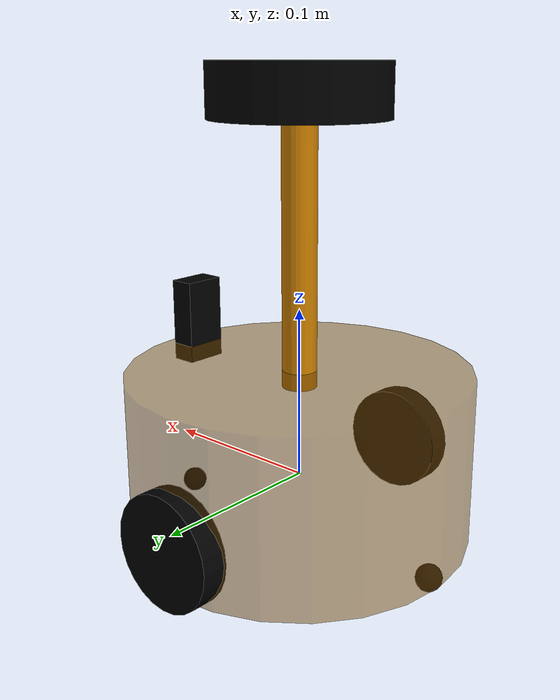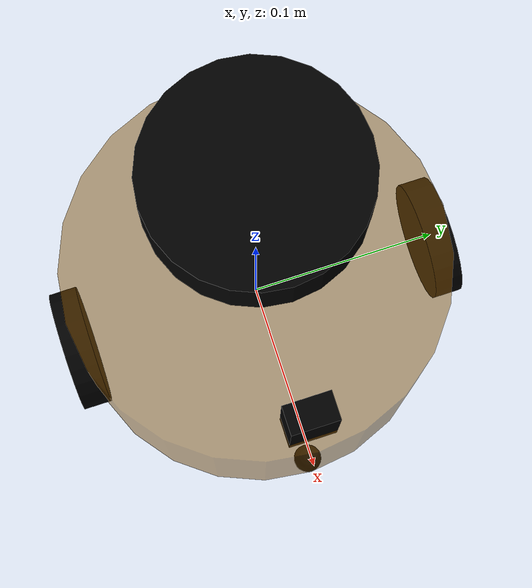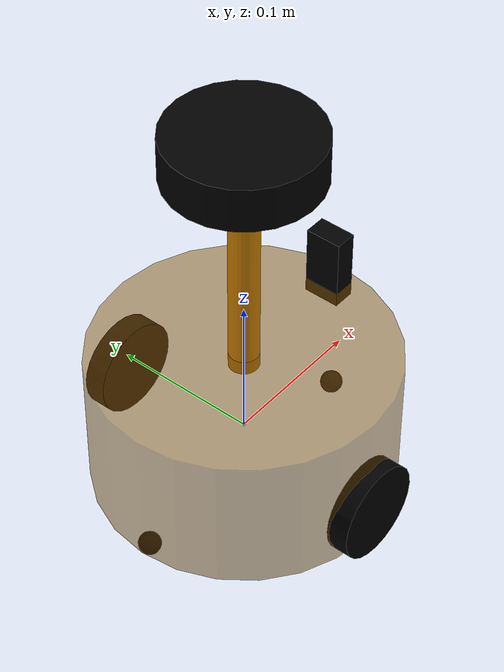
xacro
<robot name="mycar" xmlns:xacro="http://www.ros.org/wiki/xacro">

    <!-- 载入文件 -->
    <xacro:include filename="car_h.urdf.xacro" />
    <xacro:include filename="demo1_car_base.urdf.xacro" />
    <xacro:include filename="demo2_car_camera.urdf.xacro" />
    <xacro:include filename="demo3_car_ladar.urdf.xacro" />
    <xacro:include filename="gazebo/move.xacro" />

</robot>

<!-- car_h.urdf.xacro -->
<robot name="mycar" xmlns:xacro="http://wiki.ros.org/xacro">
    <!-- Macro for inertia matrix -->
    <xacro:macro name="sphere_inertial_matrix" params="m r">
        <inertial>
            <mass value="${m}" />
            <inertia ixx="${2*m*r*r/5}" ixy="0" ixz="0"
                iyy="${2*m*r*r/5}" iyz="0"
                izz="${2*m*r*r/5}" />
        </inertial>
    </xacro:macro>

    <xacro:macro name="cylinder_inertial_matrix" params="m r h">
        <inertial>
            <mass value="${m}" />
            <inertia ixx="${m*(3*r*r+h*h)/12}" ixy = "0" ixz = "0"
                iyy="${m*(3*r*r+h*h)/12}" iyz = "0"
                izz="${m*r*r/2}" />
        </inertial>
    </xacro:macro>

    <xacro:macro name="Box_inertial_matrix" params="m l w h">
       <inertial>
               <mass value="${m}" />
               <inertia ixx="${m*(h*h + l*l)/12}" ixy = "0" ixz = "0"
                   iyy="${m*(w*w + l*l)/12}" iyz= "0"
                   izz="${m*(w*w + h*h)/12}" />
       </inertial>
   </xacro:macro>
</robot>

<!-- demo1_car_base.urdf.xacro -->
<robot name="mycar" xmlns:xacro="http://www.ros.org/wiki/xacro">

    <!-- 定义常数 pi -->
    <xacro:property name="PI" value="3.1415927" />

    <!-- footprint -->
    <xacro:property name="footprint_radius" value="0.001" />
    <link name="base_footprint">
        <visual>
            <geometry>
                <sphere radius="${footprint_radius}" />
            </geometry>
            <origin xyz="0 0 0" rpy="0 0 0" />
            <material name="footprint_color">
                <color rgba="0 1 0 1" />
            </material>
        </visual>
    </link>

    <!-- 底盘为圆柱状，半径 10cm，高 8cm -->
    <xacro:property name="base_radius" value="0.1" />
    <xacro:property name="base_length" value="0.08" />
    <xacro:property name="base_mass" value="1" />

    <link name="base_link">
        <visual>
            <geometry>
                <cylinder radius="${base_radius}" length="${base_radius}" />
            </geometry>

            <material name="yellow">
                <color rgba="0.5 0.3 0.0 0.5" />
            </material>
        </visual>

        <!-- 若要在 gazebo 中显示机器人模型，则需要设置碰撞参数和惯性矩阵
            碰撞参数：对于规则物体，碰撞参数即为 visual 中的 geometry
            惯性矩阵：需要计算得出，可调用封装好的 xacro 宏-->

         <collision>
            <geometry>
                <cylinder radius="${base_radius}" length="${base_radius}" />
            </geometry>
        </collision>

        <xacro:cylinder_inertial_matrix m="${base_mass}" r="${base_radius}" h="${base_length}" />
    </link>

    <!-- 设置在 gazebo 中显示的颜色（之前在 rviz 中设置的颜色无法在 gazebo 中显示，故需另外设置） -->
    <gazebo reference="base_link">
        <material>Gazebo/Yellow</material>
    </gazebo>

    <!-- 关联 footprint 和 base_link -->
    <!-- 底盘离地间距为 1.5cm -->
    <xacro:property name="lidi" value="0.015" />
    <joint name="base2foot" type="fixed">
        <parent link="base_footprint" />
        <child link="base_link" />
        <origin xyz="0 0 ${lidi}" rpy="0 0 0" />
    </joint>

    <!-- 左右驱动轮 -->
    <!-- 两个驱动轮半径为 3.25cm,轮胎宽度1.5cm -->
    <xacro:property name="go_wheel_radius" value="0.0325" />
    <xacro:property name="go_wheel_length" value="0.015" />
    <xacro:property name="go_wheel_joint_z" value="${-1*(base_length / 2 + lidi - go_wheel_radius)}" />
    <xacro:property name="go_wheel_mass" value="0.1" />

    <xacro:macro name="go_wheel_func" params="go_wheel_name flag">
    <!-- wheel_name 为轮子名字，输入 left 或 right -->
    <!-- flag 为标志，左轮为1，右轮为-1 -->
        <link name="${go_wheel_name}_wheel">
            <visual>
                <geometry>
                    <cylinder radius="${go_wheel_radius}" length="${go_wheel_length}" />
                </geometry>
                <origin xyz="0 0 0" rpy="${PI / 2} 0 0" />
                <material name="black">
                    <color rgba="0 0 0 1" />
                </material>
            </visual>

            <collision>
                <geometry>
                    <cylinder radius="${go_wheel_radius}" length="${go_wheel_length}" />
                </geometry>
            </collision>

            <xacro:cylinder_inertial_matrix m="${go_wheel_mass}" r="${go_wheel_radius}" h="${go_wheel_length}" />

        </link>

         <gazebo reference="${go_wheel_name}_wheel">
            <material>Gazebo/Black</material>
        </gazebo>

        <!-- 关节偏移：
                x 无偏移
                y 车体半径(左轮在正半轴，右轮在负半轴)
                z z = -(车体高度 / 2 + 离地间距 - 车轮半径) -->
        <joint name="${go_wheel_name}2base" type="continuous">
            <parent link="base_link" />
            <child link="${go_wheel_name}_wheel" />
            <origin xyz="0 ${flag * base_radius} ${go_wheel_joint_z}" />
            <axis xyz="0 1 0" />
        </joint>
    </xacro:macro>

    <xacro:go_wheel_func go_wheel_name="left" flag="1" />
    <xacro:go_wheel_func go_wheel_name="right" flag="-1" />

    <!-- 前后万向轮 -->
    <!-- 两个万向轮为球状，半径 0.75cm -->
    <xacro:property name="round_wheel_radius" value="0.0075" />
    <xacro:property name="round_wheel_mass" value="0.01" />

    <xacro:macro name="round_wheel_func" params="round_wheel_name flag">
        <link name="${round_wheel_name}_wheel">
            <visual>
                <geometry>
                    <sphere radius="${round_wheel_radius}" />
                </geometry>

                <material name="black">
                    <color rgba="0 0 0 1" />
                </material>
            </visual>

            <collision>
                <geometry>
                    <sphere radius="${round_wheel_radius}" />
                </geometry>
            </collision>

            <xacro:sphere_inertial_matrix m="${round_wheel_mass}" r="${round_wheel_radius}" />

        </link>

         <gazebo reference="${round_wheel_name}_wheel">
            <material>Gazebo/Black</material>
        </gazebo>

        <!-- 关节偏移：
                x x = 车体半径 - 轮子半径(前轮在正半轴，后轮在负半轴)
                y 无偏移
                z z = -(车体高度 / 2 + 离地间距 / 2) -->
        <joint name="${round_wheel_name}2base" type="continuous">
            <parent link="base_link" />
            <child link="${round_wheel_name}_wheel" />
            <origin xyz="${flag * (base_radius - round_wheel_radius)} 0 ${-(base_length / 2 + lidi / 2)}" />
            <axis xyz="1 1 1" />
        </joint>
    </xacro:macro>

    <xacro:round_wheel_func round_wheel_name="front" flag="1" />
    <xacro:round_wheel_func round_wheel_name="back" flag="-1" />

</robot>

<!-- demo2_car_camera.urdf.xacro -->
<robot name="mycar" xmlns:xacro="http://www.ros.org/wiki/xacro">

    <xacro:property name="camera_length" value="0.015" />
    <xacro:property name="camera_width" value="0.025" />
    <xacro:property name="camera_height" value="0.05" />
    <xacro:property name="camera_mass" value="0.5" />

    <!-- 摄像头 -->
    <link name="camera">
        <visual>
            <geometry>
                <box size="${camera_length} ${camera_width} ${camera_height}" />
            </geometry>
            <origin xyz="0 0 0" rpy="0 0 0" />
            <material name="car_color">
                <color rgba="0 0 0 1" />
            </material>
        </visual>

        <collision>
            <geometry>
                <box size="${camera_length} ${camera_width} ${camera_height}" />
            </geometry>
        </collision>

        <xacro:Box_inertial_matrix m="${camera_mass}" l="${camera_length}" w="${camera_width}" h="${camera_height}" />
    </link>

    <gazebo reference="camera">
        <material>Gazebo/Red</material>
    </gazebo>

    <!-- 连接摄像头和底盘 -->
    <xacro:property name="camera_joint_x" value="${base_radius - camera_length}" />
    <xacro:property name="camera_joint_z" value="${base_length / 2 + camera_height / 2}" />

    <joint name="camera2base" type="continuous">
        <parent link="base_link" />
        <child link="camera" />
        <origin xyz="${camera_joint_x} 0 ${camera_joint_z}" rpy="0 0 0" />
        <axis xyz="0 0 1" />
    </joint>

</robot>

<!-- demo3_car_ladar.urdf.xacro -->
<robot name="mycar" xmlns:xacro="http://www.ros.org/wiki/xacro">

    <!-- 支撑杆 -->
    <xacro:property name="support_radius" value="0.01" />
    <xacro:property name="support_length" value="0.15" />
    <xacro:property name="support_mass" value="0.08" />

    <link name="support">
        <visual>
            <geometry>
                <cylinder radius="${support_radius}" length="${support_length}" />
            </geometry>

            <material name="yellow">
                <color rgba="0.8 0.5 0 1" />
            </material>
        </visual>

        <collision>
            <geometry>
                <cylinder radius="${support_radius}" length="${support_length}" />
            </geometry>
        </collision>

        <xacro:cylinder_inertial_matrix m="${support_mass}" r="${support_radius}" h="${support_length}" />
    </link>

    <gazebo reference="support">
        <material>Gazebo/Yellow</material>
    </gazebo>

    <!-- 雷达主体 -->
    <xacro:property name="ladar_radius" value="0.05" />
    <xacro:property name="ladar_length" value="0.03" />
    <xacro:property name="ladar_mass" value="0.03" />

    <link name="ladar">
        <visual>
            <geometry>
                <cylinder radius="${ladar_radius}" length="${ladar_length}" />
            </geometry>

            <material name="black">
                <color rgba="0 0 0 1" />
            </material>

        </visual>

        <collision>
            <geometry>
                <cylinder radius="${ladar_radius}" length="${ladar_length}" />
            </geometry>
        </collision>

        <xacro:cylinder_inertial_matrix m="${ladar_mass}" r="${ladar_radius}" h="${ladar_length}" />
    </link>

    <gazebo reference="ladar">
        <material>Gazebo/Black</material>
    </gazebo>

    <!-- 关节连接 -->
    <!-- 1.支撑杆与底座 -->
    <joint name="support2base" type="fixed">
        <parent link="base_link" />
        <child link="support" />
        <origin xyz="0 0 ${base_length / 2 + support_length / 2}" />
    </joint>

    <!-- 2.雷达与支撑杆 -->
    <joint name="ladar2support" type="fixed">
        <parent link="support" />
        <child link="ladar" />
        <origin xyz="0 0 ${support_length / 2 + ladar_length / 2}" />
    </joint>

</robot>
